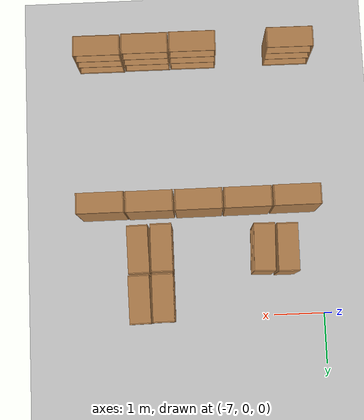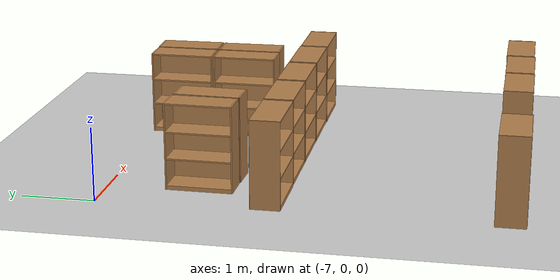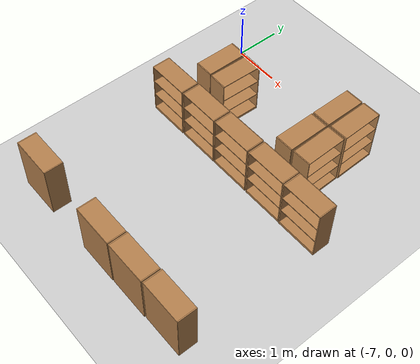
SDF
<sdf version="1.6">
 <world name="default">
  <model name="ground_plane">
   <static>1</static>
   <link name="link">
    <collision name="collision">
     <geometry><plane><normal>0 0 1</normal><size>100 100</size></plane></geometry>
     <surface>
      <contact><collide_bitmask>65535</collide_bitmask></contact>
      <friction><ode><mu>100</mu><mu2>50</mu2></ode></friction>
     </surface>
    </collision>
    <visual name="visual">
     <cast_shadows>0</cast_shadows>
     <geometry><plane><normal>0 0 1</normal><size>100 100</size></plane></geometry>
     <material>
      <script><uri>file://media/materials/scripts/gazebo.material</uri><name>Gazebo/Grey</name></script>
     </material>
    </visual>
   </link>
  </model>
  <model name="bookshelf">
   <static>1</static>
   <link name="link">
    <inertial><mass>1</mass></inertial>
    <collision name="back">
     <pose>0 0.005 0.6 0 -0 0</pose>
     <geometry><box><size>0.9 0.01 1.2</size></box></geometry>
    </collision>
    <visual name="visual1">
     <pose>0 0.005 0.6 0 -0 0</pose>
     <geometry><box><size>0.9 0.01 1.2</size></box></geometry>
     <material>
      <script><uri>file://media/materials/scripts/gazebo.material</uri><name>Gazebo/Wood</name></script>
     </material>
    </visual>
    <collision name="left_side">
     <pose>0.45 -0.195 0.6 0 -0 0</pose>
     <geometry><box><size>0.02 0.4 1.2</size></box></geometry>
    </collision>
    <visual name="visual2">
     <pose>0.45 -0.195 0.6 0 -0 0</pose>
     <geometry><box><size>0.02 0.4 1.2</size></box></geometry>
     <material>
      <script><uri>file://media/materials/scripts/gazebo.material</uri><name>Gazebo/Wood</name></script>
     </material>
    </visual>
    <collision name="right_side">
     <pose>-0.45 -0.195 0.6 0 -0 0</pose>
     <geometry><box><size>0.02 0.4 1.2</size></box></geometry>
    </collision>
    <visual name="visual3">
     <pose>-0.45 -0.195 0.6 0 -0 0</pose>
     <geometry><box><size>0.02 0.4 1.2</size></box></geometry>
     <material>
      <script><uri>file://media/materials/scripts/gazebo.material</uri><name>Gazebo/Wood</name></script>
     </material>
    </visual>
    <collision name="bottom">
     <pose>0 -0.195 0.03 0 -0 0</pose>
     <geometry><box><size>0.88 0.4 0.06</size></box></geometry>
    </collision>
    <visual name="visual4">
     <pose>0 -0.195 0.03 0 -0 0</pose>
     <geometry><box><size>0.88 0.4 0.06</size></box></geometry>
     <material>
      <script><uri>file://media/materials/scripts/gazebo.material</uri><name>Gazebo/Wood</name></script>
     </material>
    </visual>
    <collision name="top">
     <pose>0 -0.195 1.19 0 -0 0</pose>
     <geometry><box><size>0.88 0.4 0.02</size></box></geometry>
    </collision>
    <visual name="visual5">
     <pose>0 -0.195 1.19 0 -0 0</pose>
     <geometry><box><size>0.88 0.4 0.02</size></box></geometry>
     <material>
      <script><uri>file://media/materials/scripts/gazebo.material</uri><name>Gazebo/Wood</name></script>
     </material>
    </visual>
    <collision name="low_shelf">
     <pose>0 -0.195 0.43 0 -0 0</pose>
     <geometry><box><size>0.88 0.4 0.02</size></box></geometry>
    </collision>
    <visual name="visual6">
     <pose>0 -0.195 0.43 0 -0 0</pose>
     <geometry><box><size>0.88 0.4 0.02</size></box></geometry>
     <material>
      <script><uri>file://media/materials/scripts/gazebo.material</uri><name>Gazebo/Wood</name></script>
     </material>
    </visual>
    <collision name="high_shelf">
     <pose>0 -0.195 0.8 0 -0 0</pose>
     <geometry><box><size>0.88 0.4 0.02</size></box></geometry>
    </collision>
    <visual name="visual7">
     <pose>0 -0.195 0.8 0 -0 0</pose>
     <geometry><box><size>0.88 0.4 0.02</size></box></geometry>
     <material>
      <script><uri>file://media/materials/scripts/gazebo.material</uri><name>Gazebo/Wood</name></script>
     </material>
    </visual>
   </link>
   <pose>-6.04058 -1.25922 0 0 0 -1.57936</pose>
  </model>
  <model name="bookshelf_clone_14">
   <static>1</static>
   <link name="link">
    <inertial><mass>1</mass></inertial>
    <collision name="back">
     <pose>0 0.005 0.6 0 -0 0</pose>
     <geometry><box><size>0.9 0.01 1.2</size></box></geometry>
    </collision>
    <visual name="visual1">
     <pose>0 0.005 0.6 0 -0 0</pose>
     <geometry><box><size>0.9 0.01 1.2</size></box></geometry>
     <material>
      <script><uri>file://media/materials/scripts/gazebo.material</uri><name>Gazebo/Wood</name></script>
     </material>
    </visual>
    <collision name="left_side">
     <pose>0.45 -0.195 0.6 0 -0 0</pose>
     <geometry><box><size>0.02 0.4 1.2</size></box></geometry>
    </collision>
    <visual name="visual2">
     <pose>0.45 -0.195 0.6 0 -0 0</pose>
     <geometry><box><size>0.02 0.4 1.2</size></box></geometry>
     <material>
      <script><uri>file://media/materials/scripts/gazebo.material</uri><name>Gazebo/Wood</name></script>
     </material>
    </visual>
    <collision name="right_side">
     <pose>-0.45 -0.195 0.6 0 -0 0</pose>
     <geometry><box><size>0.02 0.4 1.2</size></box></geometry>
    </collision>
    <visual name="visual3">
     <pose>-0.45 -0.195 0.6 0 -0 0</pose>
     <geometry><box><size>0.02 0.4 1.2</size></box></geometry>
     <material>
      <script><uri>file://media/materials/scripts/gazebo.material</uri><name>Gazebo/Wood</name></script>
     </material>
    </visual>
    <collision name="bottom">
     <pose>0 -0.195 0.03 0 -0 0</pose>
     <geometry><box><size>0.88 0.4 0.06</size></box></geometry>
    </collision>
    <visual name="visual4">
     <pose>0 -0.195 0.03 0 -0 0</pose>
     <geometry><box><size>0.88 0.4 0.06</size></box></geometry>
     <material>
      <script><uri>file://media/materials/scripts/gazebo.material</uri><name>Gazebo/Wood</name></script>
     </material>
    </visual>
    <collision name="top">
     <pose>0 -0.195 1.19 0 -0 0</pose>
     <geometry><box><size>0.88 0.4 0.02</size></box></geometry>
    </collision>
    <visual name="visual5">
     <pose>0 -0.195 1.19 0 -0 0</pose>
     <geometry><box><size>0.88 0.4 0.02</size></box></geometry>
     <material>
      <script><uri>file://media/materials/scripts/gazebo.material</uri><name>Gazebo/Wood</name></script>
     </material>
    </visual>
    <collision name="low_shelf">
     <pose>0 -0.195 0.43 0 -0 0</pose>
     <geometry><box><size>0.88 0.4 0.02</size></box></geometry>
    </collision>
    <visual name="visual6">
     <pose>0 -0.195 0.43 0 -0 0</pose>
     <geometry><box><size>0.88 0.4 0.02</size></box></geometry>
     <material>
      <script><uri>file://media/materials/scripts/gazebo.material</uri><name>Gazebo/Wood</name></script>
     </material>
    </visual>
    <collision name="high_shelf">
     <pose>0 -0.195 0.8 0 -0 0</pose>
     <geometry><box><size>0.88 0.4 0.02</size></box></geometry>
    </collision>
    <visual name="visual7">
     <pose>0 -0.195 0.8 0 -0 0</pose>
     <geometry><box><size>0.88 0.4 0.02</size></box></geometry>
     <material>
      <script><uri>file://media/materials/scripts/gazebo.material</uri><name>Gazebo/Wood</name></script>
     </material>
    </visual>
   </link>
   <pose>-5.98256 -1.26866 0 0 -0 1.53734</pose>
  </model>
  <model name="bookshelf_clone_22">
   <static>1</static>
   <link name="link">
    <inertial><mass>1</mass></inertial>
    <collision name="back">
     <pose>0 0.005 0.6 0 -0 0</pose>
     <geometry><box><size>0.9 0.01 1.2</size></box></geometry>
    </collision>
    <visual name="visual1">
     <pose>0 0.005 0.6 0 -0 0</pose>
     <geometry><box><size>0.9 0.01 1.2</size></box></geometry>
     <material>
      <script><uri>file://media/materials/scripts/gazebo.material</uri><name>Gazebo/Wood</name></script>
     </material>
    </visual>
    <collision name="left_side">
     <pose>0.45 -0.195 0.6 0 -0 0</pose>
     <geometry><box><size>0.02 0.4 1.2</size></box></geometry>
    </collision>
    <visual name="visual2">
     <pose>0.45 -0.195 0.6 0 -0 0</pose>
     <geometry><box><size>0.02 0.4 1.2</size></box></geometry>
     <material>
      <script><uri>file://media/materials/scripts/gazebo.material</uri><name>Gazebo/Wood</name></script>
     </material>
    </visual>
    <collision name="right_side">
     <pose>-0.45 -0.195 0.6 0 -0 0</pose>
     <geometry><box><size>0.02 0.4 1.2</size></box></geometry>
    </collision>
    <visual name="visual3">
     <pose>-0.45 -0.195 0.6 0 -0 0</pose>
     <geometry><box><size>0.02 0.4 1.2</size></box></geometry>
     <material>
      <script><uri>file://media/materials/scripts/gazebo.material</uri><name>Gazebo/Wood</name></script>
     </material>
    </visual>
    <collision name="bottom">
     <pose>0 -0.195 0.03 0 -0 0</pose>
     <geometry><box><size>0.88 0.4 0.06</size></box></geometry>
    </collision>
    <visual name="visual4">
     <pose>0 -0.195 0.03 0 -0 0</pose>
     <geometry><box><size>0.88 0.4 0.06</size></box></geometry>
     <material>
      <script><uri>file://media/materials/scripts/gazebo.material</uri><name>Gazebo/Wood</name></script>
     </material>
    </visual>
    <collision name="top">
     <pose>0 -0.195 1.19 0 -0 0</pose>
     <geometry><box><size>0.88 0.4 0.02</size></box></geometry>
    </collision>
    <visual name="visual5">
     <pose>0 -0.195 1.19 0 -0 0</pose>
     <geometry><box><size>0.88 0.4 0.02</size></box></geometry>
     <material>
      <script><uri>file://media/materials/scripts/gazebo.material</uri><name>Gazebo/Wood</name></script>
     </material>
    </visual>
    <collision name="low_shelf">
     <pose>0 -0.195 0.43 0 -0 0</pose>
     <geometry><box><size>0.88 0.4 0.02</size></box></geometry>
    </collision>
    <visual name="visual6">
     <pose>0 -0.195 0.43 0 -0 0</pose>
     <geometry><box><size>0.88 0.4 0.02</size></box></geometry>
     <material>
      <script><uri>file://media/materials/scripts/gazebo.material</uri><name>Gazebo/Wood</name></script>
     </material>
    </visual>
    <collision name="high_shelf">
     <pose>0 -0.195 0.8 0 -0 0</pose>
     <geometry><box><size>0.88 0.4 0.02</size></box></geometry>
    </collision>
    <visual name="visual7">
     <pose>0 -0.195 0.8 0 -0 0</pose>
     <geometry><box><size>0.88 0.4 0.02</size></box></geometry>
     <material>
      <script><uri>file://media/materials/scripts/gazebo.material</uri><name>Gazebo/Wood</name></script>
     </material>
    </visual>
   </link>
   <pose>-3.58804 -1.33566 0 0 -0 1.58487</pose>
  </model>
  <model name="bookshelf_clone_23">
   <static>1</static>
   <link name="link">
    <inertial><mass>1</mass></inertial>
    <collision name="back">
     <pose>0 0.005 0.6 0 -0 0</pose>
     <geometry><box><size>0.9 0.01 1.2</size></box></geometry>
    </collision>
    <visual name="visual1">
     <pose>0 0.005 0.6 0 -0 0</pose>
     <geometry><box><size>0.9 0.01 1.2</size></box></geometry>
     <material>
      <script><uri>file://media/materials/scripts/gazebo.material</uri><name>Gazebo/Wood</name></script>
     </material>
    </visual>
    <collision name="left_side">
     <pose>0.45 -0.195 0.6 0 -0 0</pose>
     <geometry><box><size>0.02 0.4 1.2</size></box></geometry>
    </collision>
    <visual name="visual2">
     <pose>0.45 -0.195 0.6 0 -0 0</pose>
     <geometry><box><size>0.02 0.4 1.2</size></box></geometry>
     <material>
      <script><uri>file://media/materials/scripts/gazebo.material</uri><name>Gazebo/Wood</name></script>
     </material>
    </visual>
    <collision name="right_side">
     <pose>-0.45 -0.195 0.6 0 -0 0</pose>
     <geometry><box><size>0.02 0.4 1.2</size></box></geometry>
    </collision>
    <visual name="visual3">
     <pose>-0.45 -0.195 0.6 0 -0 0</pose>
     <geometry><box><size>0.02 0.4 1.2</size></box></geometry>
     <material>
      <script><uri>file://media/materials/scripts/gazebo.material</uri><name>Gazebo/Wood</name></script>
     </material>
    </visual>
    <collision name="bottom">
     <pose>0 -0.195 0.03 0 -0 0</pose>
     <geometry><box><size>0.88 0.4 0.06</size></box></geometry>
    </collision>
    <visual name="visual4">
     <pose>0 -0.195 0.03 0 -0 0</pose>
     <geometry><box><size>0.88 0.4 0.06</size></box></geometry>
     <material>
      <script><uri>file://media/materials/scripts/gazebo.material</uri><name>Gazebo/Wood</name></script>
     </material>
    </visual>
    <collision name="top">
     <pose>0 -0.195 1.19 0 -0 0</pose>
     <geometry><box><size>0.88 0.4 0.02</size></box></geometry>
    </collision>
    <visual name="visual5">
     <pose>0 -0.195 1.19 0 -0 0</pose>
     <geometry><box><size>0.88 0.4 0.02</size></box></geometry>
     <material>
      <script><uri>file://media/materials/scripts/gazebo.material</uri><name>Gazebo/Wood</name></script>
     </material>
    </visual>
    <collision name="low_shelf">
     <pose>0 -0.195 0.43 0 -0 0</pose>
     <geometry><box><size>0.88 0.4 0.02</size></box></geometry>
    </collision>
    <visual name="visual6">
     <pose>0 -0.195 0.43 0 -0 0</pose>
     <geometry><box><size>0.88 0.4 0.02</size></box></geometry>
     <material>
      <script><uri>file://media/materials/scripts/gazebo.material</uri><name>Gazebo/Wood</name></script>
     </material>
    </visual>
    <collision name="high_shelf">
     <pose>0 -0.195 0.8 0 -0 0</pose>
     <geometry><box><size>0.88 0.4 0.02</size></box></geometry>
    </collision>
    <visual name="visual7">
     <pose>0 -0.195 0.8 0 -0 0</pose>
     <geometry><box><size>0.88 0.4 0.02</size></box></geometry>
     <material>
      <script><uri>file://media/materials/scripts/gazebo.material</uri><name>Gazebo/Wood</name></script>
     </material>
    </visual>
   </link>
   <pose>-3.58633 -0.393072 0 0 -0 1.58591</pose>
  </model>
  <model name="bookshelf_clone_30">
   <static>1</static>
   <link name="link">
    <inertial><mass>1</mass></inertial>
    <collision name="back">
     <pose>0 0.005 0.6 0 -0 0</pose>
     <geometry><box><size>0.9 0.01 1.2</size></box></geometry>
    </collision>
    <visual name="visual1">
     <pose>0 0.005 0.6 0 -0 0</pose>
     <geometry><box><size>0.9 0.01 1.2</size></box></geometry>
     <material>
      <script><uri>file://media/materials/scripts/gazebo.material</uri><name>Gazebo/Wood</name></script>
     </material>
    </visual>
    <collision name="left_side">
     <pose>0.45 -0.195 0.6 0 -0 0</pose>
     <geometry><box><size>0.02 0.4 1.2</size></box></geometry>
    </collision>
    <visual name="visual2">
     <pose>0.45 -0.195 0.6 0 -0 0</pose>
     <geometry><box><size>0.02 0.4 1.2</size></box></geometry>
     <material>
      <script><uri>file://media/materials/scripts/gazebo.material</uri><name>Gazebo/Wood</name></script>
     </material>
    </visual>
    <collision name="right_side">
     <pose>-0.45 -0.195 0.6 0 -0 0</pose>
     <geometry><box><size>0.02 0.4 1.2</size></box></geometry>
    </collision>
    <visual name="visual3">
     <pose>-0.45 -0.195 0.6 0 -0 0</pose>
     <geometry><box><size>0.02 0.4 1.2</size></box></geometry>
     <material>
      <script><uri>file://media/materials/scripts/gazebo.material</uri><name>Gazebo/Wood</name></script>
     </material>
    </visual>
    <collision name="bottom">
     <pose>0 -0.195 0.03 0 -0 0</pose>
     <geometry><box><size>0.88 0.4 0.06</size></box></geometry>
    </collision>
    <visual name="visual4">
     <pose>0 -0.195 0.03 0 -0 0</pose>
     <geometry><box><size>0.88 0.4 0.06</size></box></geometry>
     <material>
      <script><uri>file://media/materials/scripts/gazebo.material</uri><name>Gazebo/Wood</name></script>
     </material>
    </visual>
    <collision name="top">
     <pose>0 -0.195 1.19 0 -0 0</pose>
     <geometry><box><size>0.88 0.4 0.02</size></box></geometry>
    </collision>
    <visual name="visual5">
     <pose>0 -0.195 1.19 0 -0 0</pose>
     <geometry><box><size>0.88 0.4 0.02</size></box></geometry>
     <material>
      <script><uri>file://media/materials/scripts/gazebo.material</uri><name>Gazebo/Wood</name></script>
     </material>
    </visual>
    <collision name="low_shelf">
     <pose>0 -0.195 0.43 0 -0 0</pose>
     <geometry><box><size>0.88 0.4 0.02</size></box></geometry>
    </collision>
    <visual name="visual6">
     <pose>0 -0.195 0.43 0 -0 0</pose>
     <geometry><box><size>0.88 0.4 0.02</size></box></geometry>
     <material>
      <script><uri>file://media/materials/scripts/gazebo.material</uri><name>Gazebo/Wood</name></script>
     </material>
    </visual>
    <collision name="high_shelf">
     <pose>0 -0.195 0.8 0 -0 0</pose>
     <geometry><box><size>0.88 0.4 0.02</size></box></geometry>
    </collision>
    <visual name="visual7">
     <pose>0 -0.195 0.8 0 -0 0</pose>
     <geometry><box><size>0.88 0.4 0.02</size></box></geometry>
     <material>
      <script><uri>file://media/materials/scripts/gazebo.material</uri><name>Gazebo/Wood</name></script>
     </material>
    </visual>
   </link>
   <pose>-3.64185 -1.34677 0 0 0 -1.57438</pose>
  </model>
  <model name="bookshelf_clone_31">
   <static>1</static>
   <link name="link">
    <inertial><mass>1</mass></inertial>
    <collision name="back">
     <pose>0 0.005 0.6 0 -0 0</pose>
     <geometry><box><size>0.9 0.01 1.2</size></box></geometry>
    </collision>
    <visual name="visual1">
     <pose>0 0.005 0.6 0 -0 0</pose>
     <geometry><box><size>0.9 0.01 1.2</size></box></geometry>
     <material>
      <script><uri>file://media/materials/scripts/gazebo.material</uri><name>Gazebo/Wood</name></script>
     </material>
    </visual>
    <collision name="left_side">
     <pose>0.45 -0.195 0.6 0 -0 0</pose>
     <geometry><box><size>0.02 0.4 1.2</size></box></geometry>
    </collision>
    <visual name="visual2">
     <pose>0.45 -0.195 0.6 0 -0 0</pose>
     <geometry><box><size>0.02 0.4 1.2</size></box></geometry>
     <material>
      <script><uri>file://media/materials/scripts/gazebo.material</uri><name>Gazebo/Wood</name></script>
     </material>
    </visual>
    <collision name="right_side">
     <pose>-0.45 -0.195 0.6 0 -0 0</pose>
     <geometry><box><size>0.02 0.4 1.2</size></box></geometry>
    </collision>
    <visual name="visual3">
     <pose>-0.45 -0.195 0.6 0 -0 0</pose>
     <geometry><box><size>0.02 0.4 1.2</size></box></geometry>
     <material>
      <script><uri>file://media/materials/scripts/gazebo.material</uri><name>Gazebo/Wood</name></script>
     </material>
    </visual>
    <collision name="bottom">
     <pose>0 -0.195 0.03 0 -0 0</pose>
     <geometry><box><size>0.88 0.4 0.06</size></box></geometry>
    </collision>
    <visual name="visual4">
     <pose>0 -0.195 0.03 0 -0 0</pose>
     <geometry><box><size>0.88 0.4 0.06</size></box></geometry>
     <material>
      <script><uri>file://media/materials/scripts/gazebo.material</uri><name>Gazebo/Wood</name></script>
     </material>
    </visual>
    <collision name="top">
     <pose>0 -0.195 1.19 0 -0 0</pose>
     <geometry><box><size>0.88 0.4 0.02</size></box></geometry>
    </collision>
    <visual name="visual5">
     <pose>0 -0.195 1.19 0 -0 0</pose>
     <geometry><box><size>0.88 0.4 0.02</size></box></geometry>
     <material>
      <script><uri>file://media/materials/scripts/gazebo.material</uri><name>Gazebo/Wood</name></script>
     </material>
    </visual>
    <collision name="low_shelf">
     <pose>0 -0.195 0.43 0 -0 0</pose>
     <geometry><box><size>0.88 0.4 0.02</size></box></geometry>
    </collision>
    <visual name="visual6">
     <pose>0 -0.195 0.43 0 -0 0</pose>
     <geometry><box><size>0.88 0.4 0.02</size></box></geometry>
     <material>
      <script><uri>file://media/materials/scripts/gazebo.material</uri><name>Gazebo/Wood</name></script>
     </material>
    </visual>
    <collision name="high_shelf">
     <pose>0 -0.195 0.8 0 -0 0</pose>
     <geometry><box><size>0.88 0.4 0.02</size></box></geometry>
    </collision>
    <visual name="visual7">
     <pose>0 -0.195 0.8 0 -0 0</pose>
     <geometry><box><size>0.88 0.4 0.02</size></box></geometry>
     <material>
      <script><uri>file://media/materials/scripts/gazebo.material</uri><name>Gazebo/Wood</name></script>
     </material>
    </visual>
   </link>
   <pose>-3.63965 -0.403886 0 0 0 -1.57438</pose>
  </model>
  <model name="bookshelf_clone_69">
   <static>1</static>
   <link name="link">
    <inertial><mass>1</mass></inertial>
    <collision name="back">
     <pose>0 0.005 0.6 0 -0 0</pose>
     <geometry><box><size>0.9 0.01 1.2</size></box></geometry>
    </collision>
    <visual name="visual1">
     <pose>0 0.005 0.6 0 -0 0</pose>
     <geometry><box><size>0.9 0.01 1.2</size></box></geometry>
     <material>
      <script><uri>file://media/materials/scripts/gazebo.material</uri><name>Gazebo/Wood</name></script>
     </material>
    </visual>
    <collision name="left_side">
     <pose>0.45 -0.195 0.6 0 -0 0</pose>
     <geometry><box><size>0.02 0.4 1.2</size></box></geometry>
    </collision>
    <visual name="visual2">
     <pose>0.45 -0.195 0.6 0 -0 0</pose>
     <geometry><box><size>0.02 0.4 1.2</size></box></geometry>
     <material>
      <script><uri>file://media/materials/scripts/gazebo.material</uri><name>Gazebo/Wood</name></script>
     </material>
    </visual>
    <collision name="right_side">
     <pose>-0.45 -0.195 0.6 0 -0 0</pose>
     <geometry><box><size>0.02 0.4 1.2</size></box></geometry>
    </collision>
    <visual name="visual3">
     <pose>-0.45 -0.195 0.6 0 -0 0</pose>
     <geometry><box><size>0.02 0.4 1.2</size></box></geometry>
     <material>
      <script><uri>file://media/materials/scripts/gazebo.material</uri><name>Gazebo/Wood</name></script>
     </material>
    </visual>
    <collision name="bottom">
     <pose>0 -0.195 0.03 0 -0 0</pose>
     <geometry><box><size>0.88 0.4 0.06</size></box></geometry>
    </collision>
    <visual name="visual4">
     <pose>0 -0.195 0.03 0 -0 0</pose>
     <geometry><box><size>0.88 0.4 0.06</size></box></geometry>
     <material>
      <script><uri>file://media/materials/scripts/gazebo.material</uri><name>Gazebo/Wood</name></script>
     </material>
    </visual>
    <collision name="top">
     <pose>0 -0.195 1.19 0 -0 0</pose>
     <geometry><box><size>0.88 0.4 0.02</size></box></geometry>
    </collision>
    <visual name="visual5">
     <pose>0 -0.195 1.19 0 -0 0</pose>
     <geometry><box><size>0.88 0.4 0.02</size></box></geometry>
     <material>
      <script><uri>file://media/materials/scripts/gazebo.material</uri><name>Gazebo/Wood</name></script>
     </material>
    </visual>
    <collision name="low_shelf">
     <pose>0 -0.195 0.43 0 -0 0</pose>
     <geometry><box><size>0.88 0.4 0.02</size></box></geometry>
    </collision>
    <visual name="visual6">
     <pose>0 -0.195 0.43 0 -0 0</pose>
     <geometry><box><size>0.88 0.4 0.02</size></box></geometry>
     <material>
      <script><uri>file://media/materials/scripts/gazebo.material</uri><name>Gazebo/Wood</name></script>
     </material>
    </visual>
    <collision name="high_shelf">
     <pose>0 -0.195 0.8 0 -0 0</pose>
     <geometry><box><size>0.88 0.4 0.02</size></box></geometry>
    </collision>
    <visual name="visual7">
     <pose>0 -0.195 0.8 0 -0 0</pose>
     <geometry><box><size>0.88 0.4 0.02</size></box></geometry>
     <material>
      <script><uri>file://media/materials/scripts/gazebo.material</uri><name>Gazebo/Wood</name></script>
     </material>
    </visual>
   </link>
   <pose>-2.69653 -2.05606 0 0 -0 0.00089</pose>
  </model>
  <model name="bookshelf_clone_70">
   <static>1</static>
   <link name="link">
    <inertial><mass>1</mass></inertial>
    <collision name="back">
     <pose>0 0.005 0.6 0 -0 0</pose>
     <geometry><box><size>0.9 0.01 1.2</size></box></geometry>
    </collision>
    <visual name="visual1">
     <pose>0 0.005 0.6 0 -0 0</pose>
     <geometry><box><size>0.9 0.01 1.2</size></box></geometry>
     <material>
      <script><uri>file://media/materials/scripts/gazebo.material</uri><name>Gazebo/Wood</name></script>
     </material>
    </visual>
    <collision name="left_side">
     <pose>0.45 -0.195 0.6 0 -0 0</pose>
     <geometry><box><size>0.02 0.4 1.2</size></box></geometry>
    </collision>
    <visual name="visual2">
     <pose>0.45 -0.195 0.6 0 -0 0</pose>
     <geometry><box><size>0.02 0.4 1.2</size></box></geometry>
     <material>
      <script><uri>file://media/materials/scripts/gazebo.material</uri><name>Gazebo/Wood</name></script>
     </material>
    </visual>
    <collision name="right_side">
     <pose>-0.45 -0.195 0.6 0 -0 0</pose>
     <geometry><box><size>0.02 0.4 1.2</size></box></geometry>
    </collision>
    <visual name="visual3">
     <pose>-0.45 -0.195 0.6 0 -0 0</pose>
     <geometry><box><size>0.02 0.4 1.2</size></box></geometry>
     <material>
      <script><uri>file://media/materials/scripts/gazebo.material</uri><name>Gazebo/Wood</name></script>
     </material>
    </visual>
    <collision name="bottom">
     <pose>0 -0.195 0.03 0 -0 0</pose>
     <geometry><box><size>0.88 0.4 0.06</size></box></geometry>
    </collision>
    <visual name="visual4">
     <pose>0 -0.195 0.03 0 -0 0</pose>
     <geometry><box><size>0.88 0.4 0.06</size></box></geometry>
     <material>
      <script><uri>file://media/materials/scripts/gazebo.material</uri><name>Gazebo/Wood</name></script>
     </material>
    </visual>
    <collision name="top">
     <pose>0 -0.195 1.19 0 -0 0</pose>
     <geometry><box><size>0.88 0.4 0.02</size></box></geometry>
    </collision>
    <visual name="visual5">
     <pose>0 -0.195 1.19 0 -0 0</pose>
     <geometry><box><size>0.88 0.4 0.02</size></box></geometry>
     <material>
      <script><uri>file://media/materials/scripts/gazebo.material</uri><name>Gazebo/Wood</name></script>
     </material>
    </visual>
    <collision name="low_shelf">
     <pose>0 -0.195 0.43 0 -0 0</pose>
     <geometry><box><size>0.88 0.4 0.02</size></box></geometry>
    </collision>
    <visual name="visual6">
     <pose>0 -0.195 0.43 0 -0 0</pose>
     <geometry><box><size>0.88 0.4 0.02</size></box></geometry>
     <material>
      <script><uri>file://media/materials/scripts/gazebo.material</uri><name>Gazebo/Wood</name></script>
     </material>
    </visual>
    <collision name="high_shelf">
     <pose>0 -0.195 0.8 0 -0 0</pose>
     <geometry><box><size>0.88 0.4 0.02</size></box></geometry>
    </collision>
    <visual name="visual7">
     <pose>0 -0.195 0.8 0 -0 0</pose>
     <geometry><box><size>0.88 0.4 0.02</size></box></geometry>
     <material>
      <script><uri>file://media/materials/scripts/gazebo.material</uri><name>Gazebo/Wood</name></script>
     </material>
    </visual>
   </link>
   <pose>-3.63319 -2.04939 0 0 -0 0.00089</pose>
  </model>
  <model name="bookshelf_clone_71">
   <static>1</static>
   <link name="link">
    <inertial><mass>1</mass></inertial>
    <collision name="back">
     <pose>0 0.005 0.6 0 -0 0</pose>
     <geometry><box><size>0.9 0.01 1.2</size></box></geometry>
    </collision>
    <visual name="visual1">
     <pose>0 0.005 0.6 0 -0 0</pose>
     <geometry><box><size>0.9 0.01 1.2</size></box></geometry>
     <material>
      <script><uri>file://media/materials/scripts/gazebo.material</uri><name>Gazebo/Wood</name></script>
     </material>
    </visual>
    <collision name="left_side">
     <pose>0.45 -0.195 0.6 0 -0 0</pose>
     <geometry><box><size>0.02 0.4 1.2</size></box></geometry>
    </collision>
    <visual name="visual2">
     <pose>0.45 -0.195 0.6 0 -0 0</pose>
     <geometry><box><size>0.02 0.4 1.2</size></box></geometry>
     <material>
      <script><uri>file://media/materials/scripts/gazebo.material</uri><name>Gazebo/Wood</name></script>
     </material>
    </visual>
    <collision name="right_side">
     <pose>-0.45 -0.195 0.6 0 -0 0</pose>
     <geometry><box><size>0.02 0.4 1.2</size></box></geometry>
    </collision>
    <visual name="visual3">
     <pose>-0.45 -0.195 0.6 0 -0 0</pose>
     <geometry><box><size>0.02 0.4 1.2</size></box></geometry>
     <material>
      <script><uri>file://media/materials/scripts/gazebo.material</uri><name>Gazebo/Wood</name></script>
     </material>
    </visual>
    <collision name="bottom">
     <pose>0 -0.195 0.03 0 -0 0</pose>
     <geometry><box><size>0.88 0.4 0.06</size></box></geometry>
    </collision>
    <visual name="visual4">
     <pose>0 -0.195 0.03 0 -0 0</pose>
     <geometry><box><size>0.88 0.4 0.06</size></box></geometry>
     <material>
      <script><uri>file://media/materials/scripts/gazebo.material</uri><name>Gazebo/Wood</name></script>
     </material>
    </visual>
    <collision name="top">
     <pose>0 -0.195 1.19 0 -0 0</pose>
     <geometry><box><size>0.88 0.4 0.02</size></box></geometry>
    </collision>
    <visual name="visual5">
     <pose>0 -0.195 1.19 0 -0 0</pose>
     <geometry><box><size>0.88 0.4 0.02</size></box></geometry>
     <material>
      <script><uri>file://media/materials/scripts/gazebo.material</uri><name>Gazebo/Wood</name></script>
     </material>
    </visual>
    <collision name="low_shelf">
     <pose>0 -0.195 0.43 0 -0 0</pose>
     <geometry><box><size>0.88 0.4 0.02</size></box></geometry>
    </collision>
    <visual name="visual6">
     <pose>0 -0.195 0.43 0 -0 0</pose>
     <geometry><box><size>0.88 0.4 0.02</size></box></geometry>
     <material>
      <script><uri>file://media/materials/scripts/gazebo.material</uri><name>Gazebo/Wood</name></script>
     </material>
    </visual>
    <collision name="high_shelf">
     <pose>0 -0.195 0.8 0 -0 0</pose>
     <geometry><box><size>0.88 0.4 0.02</size></box></geometry>
    </collision>
    <visual name="visual7">
     <pose>0 -0.195 0.8 0 -0 0</pose>
     <geometry><box><size>0.88 0.4 0.02</size></box></geometry>
     <material>
      <script><uri>file://media/materials/scripts/gazebo.material</uri><name>Gazebo/Wood</name></script>
     </material>
    </visual>
   </link>
   <pose>-4.57989 -2.0481 0 0 -0 0.00089</pose>
  </model>
  <model name="bookshelf_clone_72">
   <static>1</static>
   <link name="link">
    <inertial><mass>1</mass></inertial>
    <collision name="back">
     <pose>0 0.005 0.6 0 -0 0</pose>
     <geometry><box><size>0.9 0.01 1.2</size></box></geometry>
    </collision>
    <visual name="visual1">
     <pose>0 0.005 0.6 0 -0 0</pose>
     <geometry><box><size>0.9 0.01 1.2</size></box></geometry>
     <material>
      <script><uri>file://media/materials/scripts/gazebo.material</uri><name>Gazebo/Wood</name></script>
     </material>
    </visual>
    <collision name="left_side">
     <pose>0.45 -0.195 0.6 0 -0 0</pose>
     <geometry><box><size>0.02 0.4 1.2</size></box></geometry>
    </collision>
    <visual name="visual2">
     <pose>0.45 -0.195 0.6 0 -0 0</pose>
     <geometry><box><size>0.02 0.4 1.2</size></box></geometry>
     <material>
      <script><uri>file://media/materials/scripts/gazebo.material</uri><name>Gazebo/Wood</name></script>
     </material>
    </visual>
    <collision name="right_side">
     <pose>-0.45 -0.195 0.6 0 -0 0</pose>
     <geometry><box><size>0.02 0.4 1.2</size></box></geometry>
    </collision>
    <visual name="visual3">
     <pose>-0.45 -0.195 0.6 0 -0 0</pose>
     <geometry><box><size>0.02 0.4 1.2</size></box></geometry>
     <material>
      <script><uri>file://media/materials/scripts/gazebo.material</uri><name>Gazebo/Wood</name></script>
     </material>
    </visual>
    <collision name="bottom">
     <pose>0 -0.195 0.03 0 -0 0</pose>
     <geometry><box><size>0.88 0.4 0.06</size></box></geometry>
    </collision>
    <visual name="visual4">
     <pose>0 -0.195 0.03 0 -0 0</pose>
     <geometry><box><size>0.88 0.4 0.06</size></box></geometry>
     <material>
      <script><uri>file://media/materials/scripts/gazebo.material</uri><name>Gazebo/Wood</name></script>
     </material>
    </visual>
    <collision name="top">
     <pose>0 -0.195 1.19 0 -0 0</pose>
     <geometry><box><size>0.88 0.4 0.02</size></box></geometry>
    </collision>
    <visual name="visual5">
     <pose>0 -0.195 1.19 0 -0 0</pose>
     <geometry><box><size>0.88 0.4 0.02</size></box></geometry>
     <material>
      <script><uri>file://media/materials/scripts/gazebo.material</uri><name>Gazebo/Wood</name></script>
     </material>
    </visual>
    <collision name="low_shelf">
     <pose>0 -0.195 0.43 0 -0 0</pose>
     <geometry><box><size>0.88 0.4 0.02</size></box></geometry>
    </collision>
    <visual name="visual6">
     <pose>0 -0.195 0.43 0 -0 0</pose>
     <geometry><box><size>0.88 0.4 0.02</size></box></geometry>
     <material>
      <script><uri>file://media/materials/scripts/gazebo.material</uri><name>Gazebo/Wood</name></script>
     </material>
    </visual>
    <collision name="high_shelf">
     <pose>0 -0.195 0.8 0 -0 0</pose>
     <geometry><box><size>0.88 0.4 0.02</size></box></geometry>
    </collision>
    <visual name="visual7">
     <pose>0 -0.195 0.8 0 -0 0</pose>
     <geometry><box><size>0.88 0.4 0.02</size></box></geometry>
     <material>
      <script><uri>file://media/materials/scripts/gazebo.material</uri><name>Gazebo/Wood</name></script>
     </material>
    </visual>
   </link>
   <pose>-5.5231 -2.04962 0 0 -0 0.00089</pose>
  </model>
  <model name="bookshelf_clone_73">
   <static>1</static>
   <link name="link">
    <inertial><mass>1</mass></inertial>
    <collision name="back">
     <pose>0 0.005 0.6 0 -0 0</pose>
     <geometry><box><size>0.9 0.01 1.2</size></box></geometry>
    </collision>
    <visual name="visual1">
     <pose>0 0.005 0.6 0 -0 0</pose>
     <geometry><box><size>0.9 0.01 1.2</size></box></geometry>
     <material>
      <script><uri>file://media/materials/scripts/gazebo.material</uri><name>Gazebo/Wood</name></script>
     </material>
    </visual>
    <collision name="left_side">
     <pose>0.45 -0.195 0.6 0 -0 0</pose>
     <geometry><box><size>0.02 0.4 1.2</size></box></geometry>
    </collision>
    <visual name="visual2">
     <pose>0.45 -0.195 0.6 0 -0 0</pose>
     <geometry><box><size>0.02 0.4 1.2</size></box></geometry>
     <material>
      <script><uri>file://media/materials/scripts/gazebo.material</uri><name>Gazebo/Wood</name></script>
     </material>
    </visual>
    <collision name="right_side">
     <pose>-0.45 -0.195 0.6 0 -0 0</pose>
     <geometry><box><size>0.02 0.4 1.2</size></box></geometry>
    </collision>
    <visual name="visual3">
     <pose>-0.45 -0.195 0.6 0 -0 0</pose>
     <geometry><box><size>0.02 0.4 1.2</size></box></geometry>
     <material>
      <script><uri>file://media/materials/scripts/gazebo.material</uri><name>Gazebo/Wood</name></script>
     </material>
    </visual>
    <collision name="bottom">
     <pose>0 -0.195 0.03 0 -0 0</pose>
     <geometry><box><size>0.88 0.4 0.06</size></box></geometry>
    </collision>
    <visual name="visual4">
     <pose>0 -0.195 0.03 0 -0 0</pose>
     <geometry><box><size>0.88 0.4 0.06</size></box></geometry>
     <material>
      <script><uri>file://media/materials/scripts/gazebo.material</uri><name>Gazebo/Wood</name></script>
     </material>
    </visual>
    <collision name="top">
     <pose>0 -0.195 1.19 0 -0 0</pose>
     <geometry><box><size>0.88 0.4 0.02</size></box></geometry>
    </collision>
    <visual name="visual5">
     <pose>0 -0.195 1.19 0 -0 0</pose>
     <geometry><box><size>0.88 0.4 0.02</size></box></geometry>
     <material>
      <script><uri>file://media/materials/scripts/gazebo.material</uri><name>Gazebo/Wood</name></script>
     </material>
    </visual>
    <collision name="low_shelf">
     <pose>0 -0.195 0.43 0 -0 0</pose>
     <geometry><box><size>0.88 0.4 0.02</size></box></geometry>
    </collision>
    <visual name="visual6">
     <pose>0 -0.195 0.43 0 -0 0</pose>
     <geometry><box><size>0.88 0.4 0.02</size></box></geometry>
     <material>
      <script><uri>file://media/materials/scripts/gazebo.material</uri><name>Gazebo/Wood</name></script>
     </material>
    </visual>
    <collision name="high_shelf">
     <pose>0 -0.195 0.8 0 -0 0</pose>
     <geometry><box><size>0.88 0.4 0.02</size></box></geometry>
    </collision>
    <visual name="visual7">
     <pose>0 -0.195 0.8 0 -0 0</pose>
     <geometry><box><size>0.88 0.4 0.02</size></box></geometry>
     <material>
      <script><uri>file://media/materials/scripts/gazebo.material</uri><name>Gazebo/Wood</name></script>
     </material>
    </visual>
   </link>
   <pose>-6.46748 -2.05651 0 0 -0 0.00089</pose>
  </model>
  <model name="bookshelf_clone_87">
   <static>1</static>
   <link name="link">
    <inertial><mass>1</mass></inertial>
    <collision name="back">
     <pose>0 0.005 0.6 0 -0 0</pose>
     <geometry><box><size>0.9 0.01 1.2</size></box></geometry>
    </collision>
    <visual name="visual1">
     <pose>0 0.005 0.6 0 -0 0</pose>
     <geometry><box><size>0.9 0.01 1.2</size></box></geometry>
     <material>
      <script><uri>file://media/materials/scripts/gazebo.material</uri><name>Gazebo/Wood</name></script>
     </material>
    </visual>
    <collision name="left_side">
     <pose>0.45 -0.195 0.6 0 -0 0</pose>
     <geometry><box><size>0.02 0.4 1.2</size></box></geometry>
    </collision>
    <visual name="visual2">
     <pose>0.45 -0.195 0.6 0 -0 0</pose>
     <geometry><box><size>0.02 0.4 1.2</size></box></geometry>
     <material>
      <script><uri>file://media/materials/scripts/gazebo.material</uri><name>Gazebo/Wood</name></script>
     </material>
    </visual>
    <collision name="right_side">
     <pose>-0.45 -0.195 0.6 0 -0 0</pose>
     <geometry><box><size>0.02 0.4 1.2</size></box></geometry>
    </collision>
    <visual name="visual3">
     <pose>-0.45 -0.195 0.6 0 -0 0</pose>
     <geometry><box><size>0.02 0.4 1.2</size></box></geometry>
     <material>
      <script><uri>file://media/materials/scripts/gazebo.material</uri><name>Gazebo/Wood</name></script>
     </material>
    </visual>
    <collision name="bottom">
     <pose>0 -0.195 0.03 0 -0 0</pose>
     <geometry><box><size>0.88 0.4 0.06</size></box></geometry>
    </collision>
    <visual name="visual4">
     <pose>0 -0.195 0.03 0 -0 0</pose>
     <geometry><box><size>0.88 0.4 0.06</size></box></geometry>
     <material>
      <script><uri>file://media/materials/scripts/gazebo.material</uri><name>Gazebo/Wood</name></script>
     </material>
    </visual>
    <collision name="top">
     <pose>0 -0.195 1.19 0 -0 0</pose>
     <geometry><box><size>0.88 0.4 0.02</size></box></geometry>
    </collision>
    <visual name="visual5">
     <pose>0 -0.195 1.19 0 -0 0</pose>
     <geometry><box><size>0.88 0.4 0.02</size></box></geometry>
     <material>
      <script><uri>file://media/materials/scripts/gazebo.material</uri><name>Gazebo/Wood</name></script>
     </material>
    </visual>
    <collision name="low_shelf">
     <pose>0 -0.195 0.43 0 -0 0</pose>
     <geometry><box><size>0.88 0.4 0.02</size></box></geometry>
    </collision>
    <visual name="visual6">
     <pose>0 -0.195 0.43 0 -0 0</pose>
     <geometry><box><size>0.88 0.4 0.02</size></box></geometry>
     <material>
      <script><uri>file://media/materials/scripts/gazebo.material</uri><name>Gazebo/Wood</name></script>
     </material>
    </visual>
    <collision name="high_shelf">
     <pose>0 -0.195 0.8 0 -0 0</pose>
     <geometry><box><size>0.88 0.4 0.02</size></box></geometry>
    </collision>
    <visual name="visual7">
     <pose>0 -0.195 0.8 0 -0 0</pose>
     <geometry><box><size>0.88 0.4 0.02</size></box></geometry>
     <material>
      <script><uri>file://media/materials/scripts/gazebo.material</uri><name>Gazebo/Wood</name></script>
     </material>
    </visual>
   </link>
   <pose>-2.71061 -5.53907 0 0 -0 3.1353</pose>
  </model>
  <model name="bookshelf_clone_88">
   <static>1</static>
   <link name="link">
    <inertial><mass>1</mass></inertial>
    <collision name="back">
     <pose>0 0.005 0.6 0 -0 0</pose>
     <geometry><box><size>0.9 0.01 1.2</size></box></geometry>
    </collision>
    <visual name="visual1">
     <pose>0 0.005 0.6 0 -0 0</pose>
     <geometry><box><size>0.9 0.01 1.2</size></box></geometry>
     <material>
      <script><uri>file://media/materials/scripts/gazebo.material</uri><name>Gazebo/Wood</name></script>
     </material>
    </visual>
    <collision name="left_side">
     <pose>0.45 -0.195 0.6 0 -0 0</pose>
     <geometry><box><size>0.02 0.4 1.2</size></box></geometry>
    </collision>
    <visual name="visual2">
     <pose>0.45 -0.195 0.6 0 -0 0</pose>
     <geometry><box><size>0.02 0.4 1.2</size></box></geometry>
     <material>
      <script><uri>file://media/materials/scripts/gazebo.material</uri><name>Gazebo/Wood</name></script>
     </material>
    </visual>
    <collision name="right_side">
     <pose>-0.45 -0.195 0.6 0 -0 0</pose>
     <geometry><box><size>0.02 0.4 1.2</size></box></geometry>
    </collision>
    <visual name="visual3">
     <pose>-0.45 -0.195 0.6 0 -0 0</pose>
     <geometry><box><size>0.02 0.4 1.2</size></box></geometry>
     <material>
      <script><uri>file://media/materials/scripts/gazebo.material</uri><name>Gazebo/Wood</name></script>
     </material>
    </visual>
    <collision name="bottom">
     <pose>0 -0.195 0.03 0 -0 0</pose>
     <geometry><box><size>0.88 0.4 0.06</size></box></geometry>
    </collision>
    <visual name="visual4">
     <pose>0 -0.195 0.03 0 -0 0</pose>
     <geometry><box><size>0.88 0.4 0.06</size></box></geometry>
     <material>
      <script><uri>file://media/materials/scripts/gazebo.material</uri><name>Gazebo/Wood</name></script>
     </material>
    </visual>
    <collision name="top">
     <pose>0 -0.195 1.19 0 -0 0</pose>
     <geometry><box><size>0.88 0.4 0.02</size></box></geometry>
    </collision>
    <visual name="visual5">
     <pose>0 -0.195 1.19 0 -0 0</pose>
     <geometry><box><size>0.88 0.4 0.02</size></box></geometry>
     <material>
      <script><uri>file://media/materials/scripts/gazebo.material</uri><name>Gazebo/Wood</name></script>
     </material>
    </visual>
    <collision name="low_shelf">
     <pose>0 -0.195 0.43 0 -0 0</pose>
     <geometry><box><size>0.88 0.4 0.02</size></box></geometry>
    </collision>
    <visual name="visual6">
     <pose>0 -0.195 0.43 0 -0 0</pose>
     <geometry><box><size>0.88 0.4 0.02</size></box></geometry>
     <material>
      <script><uri>file://media/materials/scripts/gazebo.material</uri><name>Gazebo/Wood</name></script>
     </material>
    </visual>
    <collision name="high_shelf">
     <pose>0 -0.195 0.8 0 -0 0</pose>
     <geometry><box><size>0.88 0.4 0.02</size></box></geometry>
    </collision>
    <visual name="visual7">
     <pose>0 -0.195 0.8 0 -0 0</pose>
     <geometry><box><size>0.88 0.4 0.02</size></box></geometry>
     <material>
      <script><uri>file://media/materials/scripts/gazebo.material</uri><name>Gazebo/Wood</name></script>
     </material>
    </visual>
   </link>
   <pose>-3.64862 -5.54759 0 0 -0 3.1353</pose>
  </model>
  <model name="bookshelf_clone_89">
   <static>1</static>
   <link name="link">
    <inertial><mass>1</mass></inertial>
    <collision name="back">
     <pose>0 0.005 0.6 0 -0 0</pose>
     <geometry><box><size>0.9 0.01 1.2</size></box></geometry>
    </collision>
    <visual name="visual1">
     <pose>0 0.005 0.6 0 -0 0</pose>
     <geometry><box><size>0.9 0.01 1.2</size></box></geometry>
     <material>
      <script><uri>file://media/materials/scripts/gazebo.material</uri><name>Gazebo/Wood</name></script>
     </material>
    </visual>
    <collision name="left_side">
     <pose>0.45 -0.195 0.6 0 -0 0</pose>
     <geometry><box><size>0.02 0.4 1.2</size></box></geometry>
    </collision>
    <visual name="visual2">
     <pose>0.45 -0.195 0.6 0 -0 0</pose>
     <geometry><box><size>0.02 0.4 1.2</size></box></geometry>
     <material>
      <script><uri>file://media/materials/scripts/gazebo.material</uri><name>Gazebo/Wood</name></script>
     </material>
    </visual>
    <collision name="right_side">
     <pose>-0.45 -0.195 0.6 0 -0 0</pose>
     <geometry><box><size>0.02 0.4 1.2</size></box></geometry>
    </collision>
    <visual name="visual3">
     <pose>-0.45 -0.195 0.6 0 -0 0</pose>
     <geometry><box><size>0.02 0.4 1.2</size></box></geometry>
     <material>
      <script><uri>file://media/materials/scripts/gazebo.material</uri><name>Gazebo/Wood</name></script>
     </material>
    </visual>
    <collision name="bottom">
     <pose>0 -0.195 0.03 0 -0 0</pose>
     <geometry><box><size>0.88 0.4 0.06</size></box></geometry>
    </collision>
    <visual name="visual4">
     <pose>0 -0.195 0.03 0 -0 0</pose>
     <geometry><box><size>0.88 0.4 0.06</size></box></geometry>
     <material>
      <script><uri>file://media/materials/scripts/gazebo.material</uri><name>Gazebo/Wood</name></script>
     </material>
    </visual>
    <collision name="top">
     <pose>0 -0.195 1.19 0 -0 0</pose>
     <geometry><box><size>0.88 0.4 0.02</size></box></geometry>
    </collision>
    <visual name="visual5">
     <pose>0 -0.195 1.19 0 -0 0</pose>
     <geometry><box><size>0.88 0.4 0.02</size></box></geometry>
     <material>
      <script><uri>file://media/materials/scripts/gazebo.material</uri><name>Gazebo/Wood</name></script>
     </material>
    </visual>
    <collision name="low_shelf">
     <pose>0 -0.195 0.43 0 -0 0</pose>
     <geometry><box><size>0.88 0.4 0.02</size></box></geometry>
    </collision>
    <visual name="visual6">
     <pose>0 -0.195 0.43 0 -0 0</pose>
     <geometry><box><size>0.88 0.4 0.02</size></box></geometry>
     <material>
      <script><uri>file://media/materials/scripts/gazebo.material</uri><name>Gazebo/Wood</name></script>
     </material>
    </visual>
    <collision name="high_shelf">
     <pose>0 -0.195 0.8 0 -0 0</pose>
     <geometry><box><size>0.88 0.4 0.02</size></box></geometry>
    </collision>
    <visual name="visual7">
     <pose>0 -0.195 0.8 0 -0 0</pose>
     <geometry><box><size>0.88 0.4 0.02</size></box></geometry>
     <material>
      <script><uri>file://media/materials/scripts/gazebo.material</uri><name>Gazebo/Wood</name></script>
     </material>
    </visual>
   </link>
   <pose>-4.58372 -5.54817 0 0 -0 3.1353</pose>
  </model>
  <model name="bookshelf_clone_91">
   <static>1</static>
   <link name="link">
    <inertial><mass>1</mass></inertial>
    <collision name="back">
     <pose>0 0.005 0.6 0 -0 0</pose>
     <geometry><box><size>0.9 0.01 1.2</size></box></geometry>
    </collision>
    <visual name="visual1">
     <pose>0 0.005 0.6 0 -0 0</pose>
     <geometry><box><size>0.9 0.01 1.2</size></box></geometry>
     <material>
      <script><uri>file://media/materials/scripts/gazebo.material</uri><name>Gazebo/Wood</name></script>
     </material>
    </visual>
    <collision name="left_side">
     <pose>0.45 -0.195 0.6 0 -0 0</pose>
     <geometry><box><size>0.02 0.4 1.2</size></box></geometry>
    </collision>
    <visual name="visual2">
     <pose>0.45 -0.195 0.6 0 -0 0</pose>
     <geometry><box><size>0.02 0.4 1.2</size></box></geometry>
     <material>
      <script><uri>file://media/materials/scripts/gazebo.material</uri><name>Gazebo/Wood</name></script>
     </material>
    </visual>
    <collision name="right_side">
     <pose>-0.45 -0.195 0.6 0 -0 0</pose>
     <geometry><box><size>0.02 0.4 1.2</size></box></geometry>
    </collision>
    <visual name="visual3">
     <pose>-0.45 -0.195 0.6 0 -0 0</pose>
     <geometry><box><size>0.02 0.4 1.2</size></box></geometry>
     <material>
      <script><uri>file://media/materials/scripts/gazebo.material</uri><name>Gazebo/Wood</name></script>
     </material>
    </visual>
    <collision name="bottom">
     <pose>0 -0.195 0.03 0 -0 0</pose>
     <geometry><box><size>0.88 0.4 0.06</size></box></geometry>
    </collision>
    <visual name="visual4">
     <pose>0 -0.195 0.03 0 -0 0</pose>
     <geometry><box><size>0.88 0.4 0.06</size></box></geometry>
     <material>
      <script><uri>file://media/materials/scripts/gazebo.material</uri><name>Gazebo/Wood</name></script>
     </material>
    </visual>
    <collision name="top">
     <pose>0 -0.195 1.19 0 -0 0</pose>
     <geometry><box><size>0.88 0.4 0.02</size></box></geometry>
    </collision>
    <visual name="visual5">
     <pose>0 -0.195 1.19 0 -0 0</pose>
     <geometry><box><size>0.88 0.4 0.02</size></box></geometry>
     <material>
      <script><uri>file://media/materials/scripts/gazebo.material</uri><name>Gazebo/Wood</name></script>
     </material>
    </visual>
    <collision name="low_shelf">
     <pose>0 -0.195 0.43 0 -0 0</pose>
     <geometry><box><size>0.88 0.4 0.02</size></box></geometry>
    </collision>
    <visual name="visual6">
     <pose>0 -0.195 0.43 0 -0 0</pose>
     <geometry><box><size>0.88 0.4 0.02</size></box></geometry>
     <material>
      <script><uri>file://media/materials/scripts/gazebo.material</uri><name>Gazebo/Wood</name></script>
     </material>
    </visual>
    <collision name="high_shelf">
     <pose>0 -0.195 0.8 0 -0 0</pose>
     <geometry><box><size>0.88 0.4 0.02</size></box></geometry>
    </collision>
    <visual name="visual7">
     <pose>0 -0.195 0.8 0 -0 0</pose>
     <geometry><box><size>0.88 0.4 0.02</size></box></geometry>
     <material>
      <script><uri>file://media/materials/scripts/gazebo.material</uri><name>Gazebo/Wood</name></script>
     </material>
    </visual>
   </link>
   <pose>-6.49786 -5.55229 0 0 -0 3.1353</pose>
  </model>
 </world>
</sdf>
